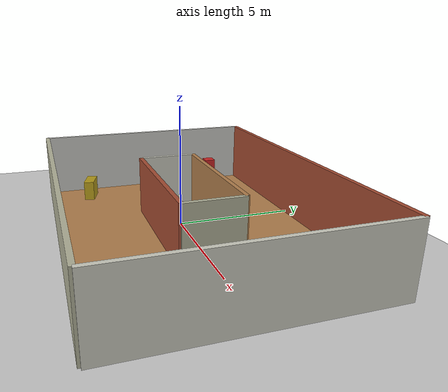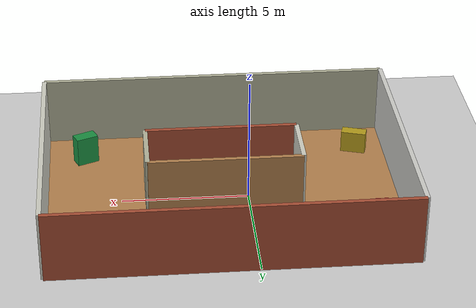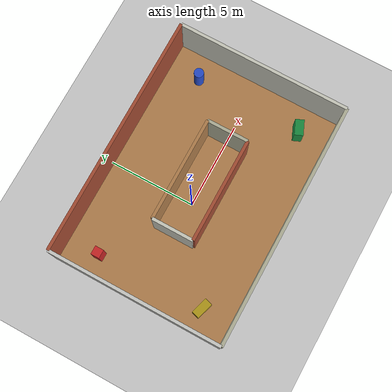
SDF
<?xml version="1.0" ?>
<sdf version="1.6">
  <world name="scenario_3_corridor_loop">
    <include><uri>model://sun</uri></include>
    <include><uri>model://ground_plane</uri></include>

    <model name="floor"><static>true</static><pose>1 0 0.005 0 0 0</pose><link name="link">
      <collision name="c"><geometry><box><size>14 10 0.01</size></box></geometry></collision>
      <visual name="v"><geometry><box><size>14 10 0.01</size></box></geometry><material><script><uri>file://media/materials/scripts/gazebo.material</uri><name>Gazebo/WoodFloor</name></script></material></visual>
    </link></model>

    <model name="outer_box"><static>true</static>
      <link name="north"><pose>1 5 1.4 0 0 0</pose><collision name="c"><geometry><box><size>14 0.18 2.8</size></box></geometry></collision><visual name="v"><geometry><box><size>14 0.18 2.8</size></box></geometry><material><script><uri>file://media/materials/scripts/gazebo.material</uri><name>Gazebo/Bricks</name></script></material></visual></link>
      <link name="south"><pose>1 -5 1.4 0 0 0</pose><collision name="c"><geometry><box><size>14 0.18 2.8</size></box></geometry></collision><visual name="v"><geometry><box><size>14 0.18 2.8</size></box></geometry><material><script><uri>file://media/materials/scripts/gazebo.material</uri><name>Gazebo/Residential</name></script></material></visual></link>
      <link name="east"><pose>8 0 1.4 0 0 0</pose><collision name="c"><geometry><box><size>0.18 10 2.8</size></box></geometry></collision><visual name="v"><geometry><box><size>0.18 10 2.8</size></box></geometry><material><script><uri>file://media/materials/scripts/gazebo.material</uri><name>Gazebo/PaintedWall</name></script></material></visual></link>
      <link name="west"><pose>-6 0 1.4 0 0 0</pose><collision name="c"><geometry><box><size>0.18 10 2.8</size></box></geometry></collision><visual name="v"><geometry><box><size>0.18 10 2.8</size></box></geometry><material><script><uri>file://media/materials/scripts/gazebo.material</uri><name>Gazebo/CeilingTiled</name></script></material></visual></link>
    </model>

    <model name="loop_walls"><static>true</static>
      <link name="center_block_n"><pose>1 1.2 1.25 0 0 0</pose><collision name="c"><geometry><box><size>6.0 0.18 2.5</size></box></geometry></collision><visual name="v"><geometry><box><size>6.0 0.18 2.5</size></box></geometry><material><script><uri>file://media/materials/scripts/gazebo.material</uri><name>Gazebo/Wood</name></script></material></visual></link>
      <link name="center_block_s"><pose>1 -1.2 1.25 0 0 0</pose><collision name="c"><geometry><box><size>6.0 0.18 2.5</size></box></geometry></collision><visual name="v"><geometry><box><size>6.0 0.18 2.5</size></box></geometry><material><script><uri>file://media/materials/scripts/gazebo.material</uri><name>Gazebo/Bricks</name></script></material></visual></link>
      <link name="center_block_e"><pose>4 0 1.25 0 0 0</pose><collision name="c"><geometry><box><size>0.18 2.4 2.5</size></box></geometry></collision><visual name="v"><geometry><box><size>0.18 2.4 2.5</size></box></geometry><material><script><uri>file://media/materials/scripts/gazebo.material</uri><name>Gazebo/Residential</name></script></material></visual></link>
      <link name="center_block_w"><pose>-2 0 1.25 0 0 0</pose><collision name="c"><geometry><box><size>0.18 2.4 2.5</size></box></geometry></collision><visual name="v"><geometry><box><size>0.18 2.4 2.5</size></box></geometry><material><script><uri>file://media/materials/scripts/gazebo.material</uri><name>Gazebo/PaintedWall</name></script></material></visual></link>
    </model>

    <model name="corridor_landmarks"><static>true</static>
      <link name="red_marker"><pose>-4.8 3.0 0.7 0 0 0</pose><collision name="c"><geometry><box><size>0.5 0.5 1.4</size></box></geometry></collision><visual name="v"><geometry><box><size>0.5 0.5 1.4</size></box></geometry><material><script><uri>file://media/materials/scripts/gazebo.material</uri><name>Gazebo/Red</name></script></material></visual></link>
      <link name="blue_marker"><pose>6.5 3.1 0.65 0 0 0</pose><collision name="c"><geometry><cylinder><radius>0.28</radius><length>1.3</length></cylinder></geometry></collision><visual name="v"><geometry><cylinder><radius>0.28</radius><length>1.3</length></cylinder></geometry><material><script><uri>file://media/materials/scripts/gazebo.material</uri><name>Gazebo/Blue</name></script></material></visual></link>
      <link name="green_marker"><pose>6.4 -3.2 0.6 0 0 0.4</pose><collision name="c"><geometry><box><size>0.9 0.5 1.2</size></box></geometry></collision><visual name="v"><geometry><box><size>0.9 0.5 1.2</size></box></geometry><material><ambient>0.1 0.55 0.25 1</ambient><diffuse>0.1 0.55 0.25 1</diffuse></material></visual></link>
      <link name="yellow_marker"><pose>-4.7 -3.2 0.45 0 0 -0.3</pose><collision name="c"><geometry><box><size>1.0 0.45 0.9</size></box></geometry></collision><visual name="v"><geometry><box><size>1.0 0.45 0.9</size></box></geometry><material><ambient>0.7 0.6 0.1 1</ambient><diffuse>0.7 0.6 0.1 1</diffuse></material></visual></link>
    </model>
  </world>
</sdf>
